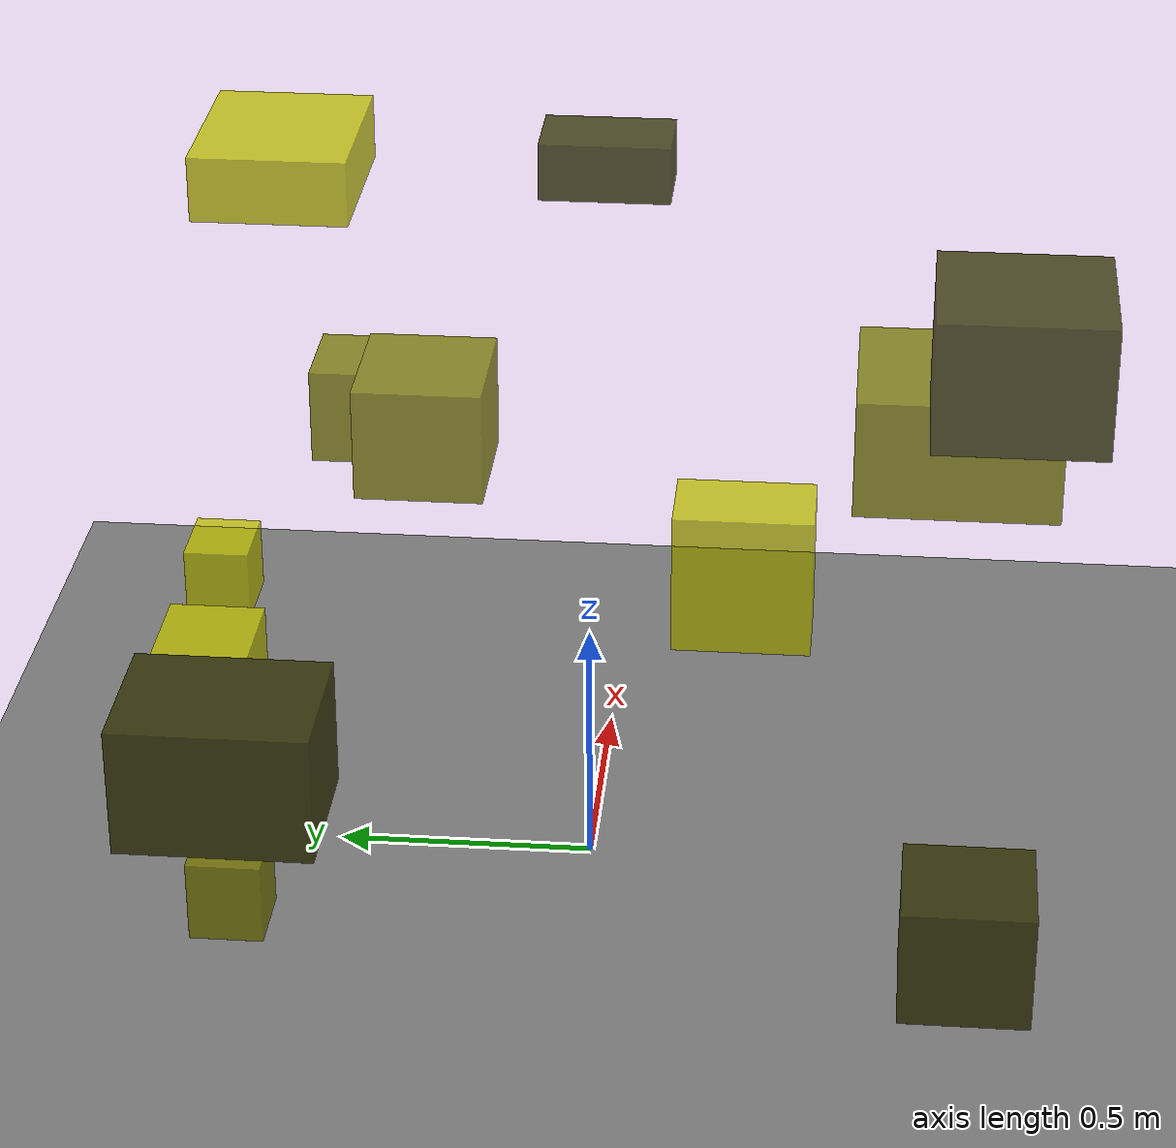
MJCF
<?xml version="1.0"?>
<mujoco model="obstacle_scene">
  <compiler angle="radian" coordinate="local"/>
  <option timestep="0.001" gravity="0 0 -9.81"/>

  <asset>
    <material name="obstacle_mat" rgba="0.8 0.8 0.0 0.8"/>
    <material name="ground_mat" rgba="0.5 0.5 0.5 1"/>
  </asset>

  <worldbody>
    <!-- Ground plane -->
    <geom name="ground" type="plane" size="3 3 0.1" material="ground_mat"/>

    <!-- Obstacles -->
    <body name="obstacle_0" pos="-0.190866 -0.784918 1.216573">
      <geom name="obs_0" type="box" size="0.156511 0.157275 0.125571" rgba="0.2 0.2 0.0 0.8"/>
    </body>
    <body name="obstacle_1" pos="0.452784 0.472061 0.759399">
      <geom name="obs_1" type="box" size="0.092807 0.121963 0.096798" rgba="0.5 0.5 0.0 0.8"/>
    </body>
    <body name="obstacle_2" pos="-0.202936 0.720553 0.429641">
      <geom name="obs_2" type="box" size="0.178921 0.092383 0.107459" rgba="0.8 0.8 0.0 0.8"/>
    </body>
    <body name="obstacle_3" pos="-0.904911 -0.718668 0.471244">
      <geom name="obs_3" type="box" size="0.107907 0.111755 0.108209" rgba="0.2 0.2 0.0 0.8"/>
    </body>
    <body name="obstacle_4" pos="0.238935 -0.691365 0.861381">
      <geom name="obs_4" type="box" size="0.171833 0.197628 0.119277" rgba="0.5 0.5 0.0 0.8"/>
    </body>
    <body name="obstacle_5" pos="0.620804 0.674770 1.207945">
      <geom name="obs_5" type="box" size="0.183530 0.157616 0.067040" rgba="0.8 0.8 0.0 0.8"/>
    </body>
    <body name="obstacle_6" pos="-0.727127 0.571825 0.642300">
      <geom name="obs_6" type="box" size="0.134587 0.176281 0.120618" rgba="0.2 0.2 0.0 0.8"/>
    </body>
    <body name="obstacle_7" pos="-0.160870 0.284177 1.031175">
      <geom name="obs_7" type="box" size="0.125759 0.116921 0.105664" rgba="0.5 0.5 0.0 0.8"/>
    </body>
    <body name="obstacle_8" pos="0.876362 0.899706 0.114577">
      <geom name="obs_8" type="box" size="0.082047 0.070931 0.078554" rgba="0.8 0.8 0.0 0.8"/>
    </body>
    <body name="obstacle_9" pos="0.571932 0.016087 1.247256">
      <geom name="obs_9" type="box" size="0.079628 0.130270 0.058209" rgba="0.2 0.2 0.0 0.8"/>
    </body>
    <body name="obstacle_10" pos="-0.575483 0.605371 0.275038">
      <geom name="obs_10" type="box" size="0.068188 0.068071 0.077855" rgba="0.5 0.5 0.0 0.8"/>
    </body>
    <body name="obstacle_11" pos="-0.742568 -0.323876 1.071729">
      <geom name="obs_11" type="box" size="0.072368 0.115251 0.121541" rgba="0.8 0.8 0.0 0.8"/>
    </body>
  </worldbody>
</mujoco>
